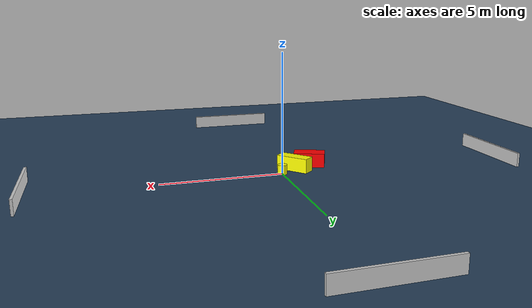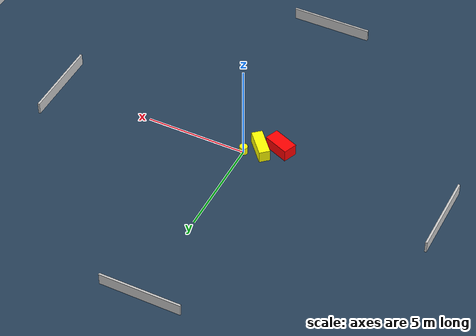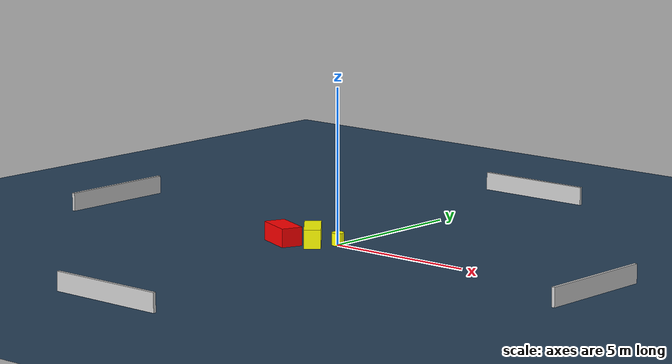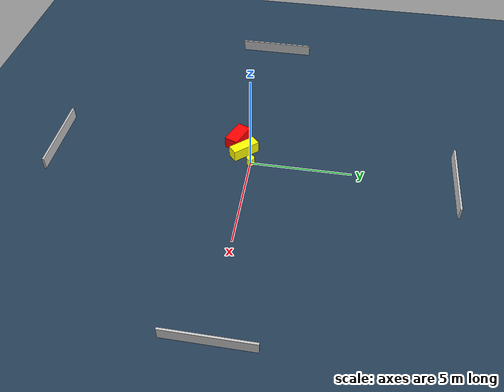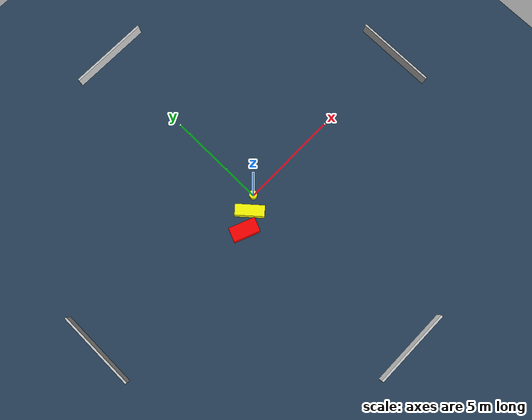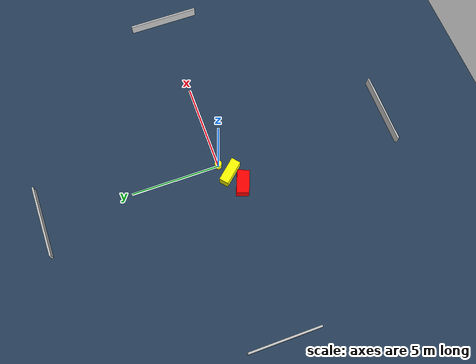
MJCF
<?xml version="1.0" ?>
<mujoco model="generated_environment">
  <option timestep="0.01" integrator="RK4" cone="elliptic"/>
  <default>
    <geom density="1"/>
  </default>
  <asset>
    <texture builtin="gradient" height="3072" name="skybox" rgb1="0.3 0.5 0.7" rgb2="0 0 0" type="skybox" width="512"/>
    <texture builtin="checker" height="300" name="groundplane" rgb1="0.2 0.3 0.4" rgb2="0.1 0.2 0.3" type="2d" width="300"/>
    <material name="groundplane" reflectance="0.2" texrepeat="5 5" texture="groundplane"/>
  </asset>
  <worldbody>
    <light dir="0 0 -1" directional="true" pos="0 0 1.5"/>
    <geom condim="3" friction="0.5 0.005 0.001" material="groundplane" name="floor" pos="0 0 0" size="0 0 0.05" type="plane"/>
    <body name="walls">
      <geom name="wall_1" condim="4" pos="-10.0 0.0 0.3" rgba="0.800000011920929 0.800000011920929 0.800000011920929 1.0" size="0.05 2.0 0.3" type="box"/>
      <geom name="wall_2" condim="4" pos="10.0 0.0 0.3" rgba="0.800000011920929 0.800000011920929 0.800000011920929 1.0" size="0.05 2.0 0.3" type="box"/>
      <geom name="wall_3" condim="4" pos="0.0 -10.0 0.3" rgba="0.800000011920929 0.800000011920929 0.800000011920929 1.0" size="2.0 0.05 0.3" type="box"/>
      <geom name="wall_4" condim="4" pos="0.0 10.0 0.3" rgba="0.800000011920929 0.800000011920929 0.800000011920929 1.0" size="2.0 0.05 0.3" type="box"/>
    </body>
    <body name="robot">
      <joint name="joint_x" type="slide" pos="0 0 0" axis="1 0 0"/>
      <joint name="joint_y" type="slide" pos="0 0 0" axis="0 1 0"/>
      <geom name="robot" type="cylinder" pos="0.0 0.0 0.2" size="0.2 0.2 0.0" mass="5.0" friction="1.0 0.005 0.0001" condim="4" rgba="1.0 1.0 0.0 1.0"/>
    </body>
    <body name="obstacle_1_movable">
      <geom name="obstacle_1_movable" condim="4" pos="-0.6725752968008861 -0.4408102573191531 0.3" euler="0 0 221.2823035177615" friction="0.0 0.005 0.001" rgba="1.0 1.0 0.0 1.0" size="0.26738229300649236 0.7068954595840129 0.3" type="box" mass="0.1"/>
      <joint type="free"/>
    </body>
    <body name="obstacle_2_static">
      <geom name="obstacle_2_static" condim="4" pos="-1.4990606127342692 -0.9058526167675569 0.3" euler="0 0 337.9624199967655" friction="0.0 0.005 0.001" rgba="1.0 0.0 0.0 1.0" size="0.6590324736580211 0.34908428129259295 0.3" type="box"/>
    </body>
  </worldbody>
  <actuator>
    <motor name="actuator_x" joint="joint_x" gear="1" ctrlrange="-1 1"/>
    <motor name="actuator_y" joint="joint_y" gear="1" ctrlrange="-1 1"/>
  </actuator>
</mujoco>
